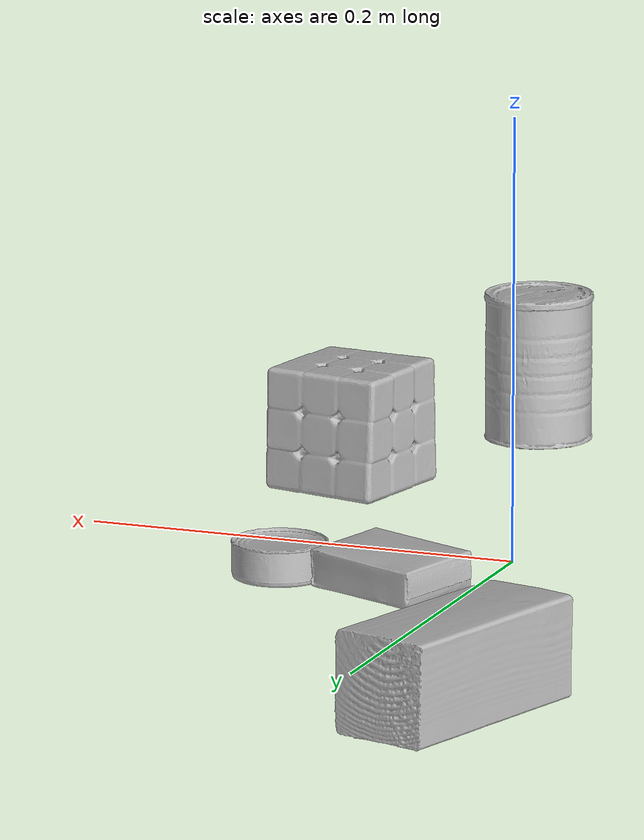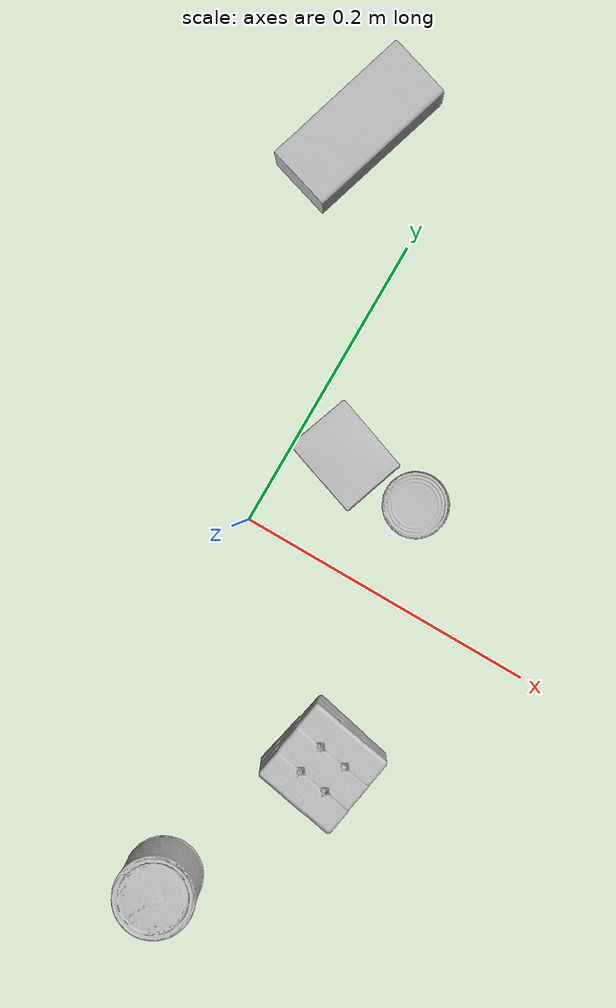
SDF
<sdf version="1.4">
  <world name="default">
    <light name="light1" type="point">
      <pose>0 0 1 0 0 0</pose>
      <diffuse>3 3 3 1</diffuse>
      <specular>3 3 3 1</specular>
    </light>
    <light name="light2" type="point">
      <pose>0 0.5 2 0 0 0</pose>
      <diffuse>1 1 1 1</diffuse>
      <specular>1 1 1 1</specular>
    </light>
    <light name="light3" type="point">
      <pose>0 0.5 2 0 0 0</pose>
      <diffuse>3 3 3 1</diffuse>
      <specular>3 3 3 1</specular>
    </light>
    <scene>
      <ambient>0.7 0.7 0.7</ambient>
    </scene>
    <model name="box1">
      <link name="link_box1">
        <collision name="default">
          <geometry>
            <mesh>
              <uri>model://rubiks_cube/collision_meshes/collision.obj</uri>
              <scale>1.0 1.0 1.0</scale>
            </mesh>
          </geometry>
          <surface>
            <friction>
              <ode>
                <mu>0.5</mu>
                <mu2>0.5</mu2>
              </ode>
            </friction>
          <contact>
        <ode>
            <max_vel>0</max_vel>
            <min_depth>0.0001</min_depth>
            <kp>1e8</kp>
        </ode>
    </contact></surface>
        </collision>
        <visual name="default">
          <geometry>
            <mesh>
              <uri>model://rubiks_cube/visual_meshes/visual.dae</uri>
              <scale>1.0 1.0 1.0</scale>
            </mesh>
          </geometry>
        </visual>
        <inertial>
          <mass>0.19534927606582642</mass>
          <pose>2.6721041649580002e-05 5.256967051536776e-05 -7.264316082000732e-06 -0.05467254413799041 -0.09813991388320625 -0.034457004790174134</pose>
          <inertia>
            <ixx>0.0001079436</ixx>
            <iyy>0.00010744019</iyy>
            <izz>0.000108838074</izz>
            <ixy>0</ixy>
            <ixz>0</ixz>
            <iyz>0</iyz>
          </inertia>
        </inertial>
      </link>
      <pose>0.11712410300970078 -0.10659811645746231 0.028678935021162033 -4.242179525336306e-06 -1.5470395165030092e-06 1.3913026894404628</pose>
    </model>
    <model name="box2">
      <link name="link_box2">
        <collision name="default">
          <geometry>
            <mesh>
              <uri>model://pudding_box/collision_meshes/collision.obj</uri>
              <scale>0.5 0.5 0.5</scale>
            </mesh>
          </geometry>
          <surface>
            <friction>
              <ode>
                <mu>0.5</mu>
                <mu2>0.5</mu2>
              </ode>
            </friction>
          <contact>
        <ode>
            <max_vel>0</max_vel>
            <min_depth>0.0001</min_depth>
            <kp>1e8</kp>
        </ode>
    </contact></surface>
        </collision>
        <visual name="default">
          <geometry>
            <mesh>
              <uri>model://pudding_box/visual_meshes/visual.dae</uri>
              <scale>0.5 0.5 0.5</scale>
            </mesh>
          </geometry>
        </visual>
        <inertial>
          <mass>0.04727919027209282</mass>
          <pose>0.00024474109522998333 0.00040339428232982755 -0.0002594413817860186 0.0052131013240192415 -0.0066037977924420415 0.020079828889419827</pose>
          <inertia>
            <ixx>1.3361672e-05</ixx>
            <iyy>8.9898285e-06</iyy>
            <izz>1.9732002e-05</izz>
            <ixy>0</ixy>
            <ixz>0</ixz>
            <iyz>0</iyz>
          </inertia>
        </inertial>
      </link>
      <pose>0.032485563308000565 0.06564957648515701 0.009862900711596012 0.022348557763081017 -0.011391360619552841 -1.9057971174191082</pose>
    </model>
    <model name="box3">
      <link name="link_box3">
        <collision name="default">
          <geometry>
            <mesh>
              <uri>model://wood_block/collision_meshes/collision.obj</uri>
              <scale>0.5 0.5 0.5</scale>
            </mesh>
          </geometry>
          <surface>
            <friction>
              <ode>
                <mu>0.5</mu>
                <mu2>0.5</mu2>
              </ode>
            </friction>
          <contact>
        <ode>
            <max_vel>0</max_vel>
            <min_depth>0.0001</min_depth>
            <kp>1e8</kp>
        </ode>
    </contact></surface>
        </collision>
        <visual name="default">
          <geometry>
            <mesh>
              <uri>model://wood_block/visual_meshes/visual.dae</uri>
              <scale>0.5 0.5 0.5</scale>
            </mesh>
          </geometry>
        </visual>
        <inertial>
          <mass>0.3041442632675171</mass>
          <pose>-2.9066577553749084e-06 -0.000285404734313488 0.00013204291462898254 -0.05220823380361383 -0.0051926957206686235 -0.0068613778665259926</pose>
          <inertia>
            <ixx>0.00010174775</ixx>
            <iyy>0.0003214212</iyy>
            <izz>0.0003202189</izz>
            <ixy>0</ixy>
            <ixz>0</ixz>
            <iyz>0</iyz>
          </inertia>
        </inertial>
      </link>
      <pose>-0.06354278326034546 0.24685712158679962 0.022629261016845703 -0.005208543600715903 0.005718771522003293 1.2762536931163402</pose>
    </model>
    <model name="can1">
      <link name="link_can1">
        <collision name="default">
          <geometry>
            <mesh>
              <uri>model://master_chef_can/collision_meshes/collision.obj</uri>
              <scale>0.5 0.5 0.5</scale>
            </mesh>
          </geometry>
          <surface>
            <friction>
              <ode>
                <mu>0.5</mu>
                <mu2>0.5</mu2>
              </ode>
            </friction>
          <contact>
        <ode>
            <max_vel>0</max_vel>
            <min_depth>0.0001</min_depth>
            <kp>1e8</kp>
        </ode>
    </contact></surface>
        </collision>
        <visual name="default">
          <geometry>
            <mesh>
              <uri>model://master_chef_can/visual_meshes/visual.dae</uri>
              <scale>0.5 0.5 0.5</scale>
            </mesh>
          </geometry>
        </visual>
        <inertial>
          <mass>0.18719419836997986</mass>
          <pose>-4.661963976104744e-05 1.3926856468060578e-07 -5.0798327720258385e-05 -0.0017995099067415357 0.0006479319374111454 -0.6102582770449616</pose>
          <inertia>
            <ixx>0.0001098703</ixx>
            <iyy>0.00010906167</iyy>
            <izz>6.071174e-05</izz>
            <ixy>0</ixy>
            <ixz>0</ixz>
            <iyz>0</iyz>
          </inertia>
        </inertial>
      </link>
      <pose>0.06750208139419556 -0.2235199511051178 0.03530198708176613 -5.317516808330895e-07 -4.6236521490067224e-07 -1.5402509740820918</pose>
    </model>
    <model name="can2">
      <link name="link_can2">
        <collision name="default">
          <geometry>
            <mesh>
              <uri>model://tuna_fish_can/collision_meshes/collision.obj</uri>
              <scale>0.5 0.5 0.5</scale>
            </mesh>
          </geometry>
          <surface>
            <friction>
              <ode>
                <mu>0.5</mu>
                <mu2>0.5</mu2>
              </ode>
            </friction>
          <contact>
        <ode>
            <max_vel>0</max_vel>
            <min_depth>0.0001</min_depth>
            <kp>1e8</kp>
        </ode>
    </contact></surface>
        </collision>
        <visual name="default">
          <geometry>
            <mesh>
              <uri>model://tuna_fish_can/visual_meshes/visual.dae</uri>
              <scale>0.5 0.5 0.5</scale>
            </mesh>
          </geometry>
        </visual>
        <inertial>
          <mass>0.011327341198921204</mass>
          <pose>-2.0361354472697712e-05 -7.256336175487377e-06 -0.0005269023822620511 -0.001794480782384504 0.00017159763230480823 0.24052991368062646</pose>
          <inertia>
            <ixx>1.5314733e-06</ixx>
            <iyy>1.52509e-06</iyy>
            <izz>2.6205691e-06</izz>
            <ixy>0</ixy>
            <ixz>0</ixz>
            <iyz>0</iyz>
          </inertia>
        </inertial>
      </link>
      <pose>0.08641283959150314 0.06103251874446869 0.00851999968290329 4.6230187645642845e-09 4.046768352497703e-08 -1.3374294118751444</pose>
    </model>
  <physics type="ode">
      <max_contacts>50</max_contacts>
      <ode>
        <solver>
          <type>quick</type>
          <iters>75</iters>
        </solver>
        <constraints>
          <contact_max_correcting_vel>0</contact_max_correcting_vel>
          <contact_surface_layer>0</contact_surface_layer>
        </constraints>
      </ode>
    </physics></world>
</sdf>
